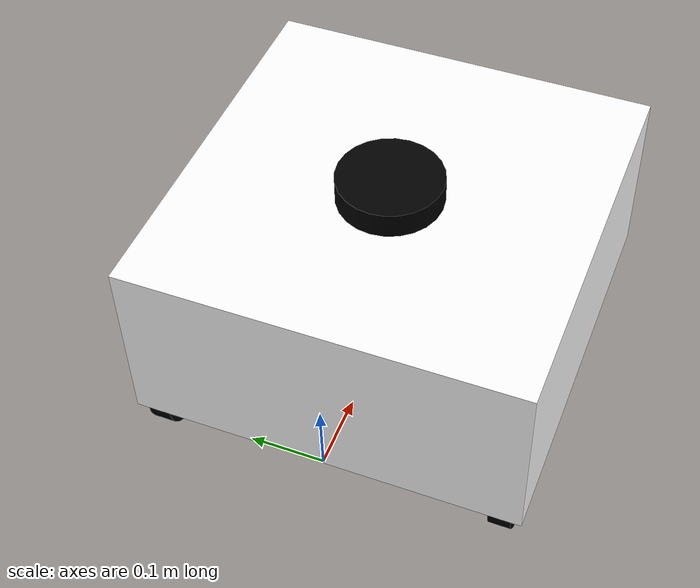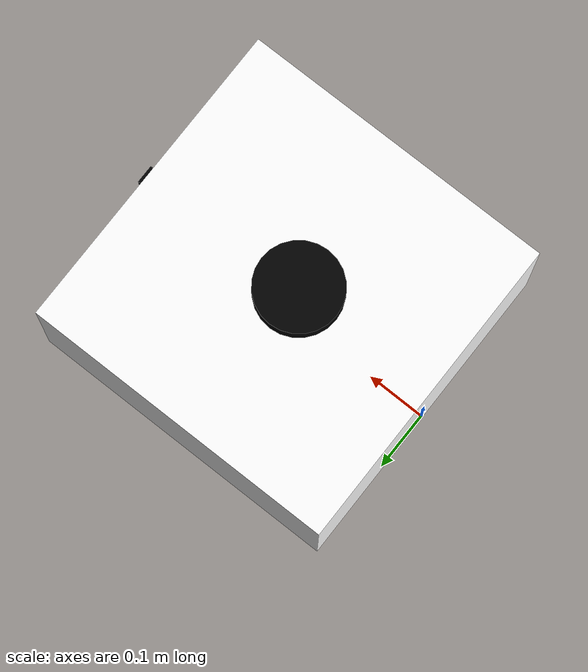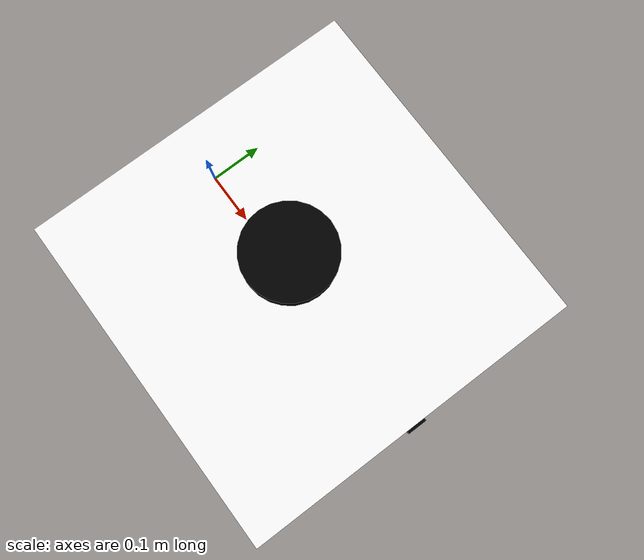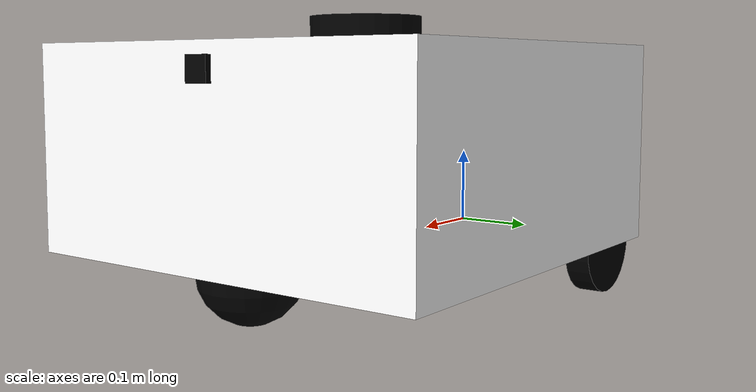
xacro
<?xml version="1.0"?>
<robot xmlns:xacro="http://www.ros.org/wiki/xacro"  name="robot">

    <xacro:include filename="robot_core.xacro" />
    <xacro:include filename="gazebo_control.xacro"/>
    <xacro:include filename="lidar.xacro"/>
    <xacro:include filename="camera.xacro"/>

</robot>

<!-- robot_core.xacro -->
<robot xmlns:xacro="http://www.ros.org/wiki/xacro">

<xacro:include filename="inertial_macros.xacro" />

<material name="black">
<color rgba="0 0 0 1"/>
</material>
<material name="blue">
<color rgba="0.2 0.2 1 1"/>
</material>
<material name="white">
<color rgba="1 1 1 1"/>
</material>

<!-- BASE LINK -->

<link name="base_link">
</link>

<!-- NAVI LINK -->
<joint name="navi_joint" type="fixed">
<parent link="base_link"/>
<child link="navi"/>
<origin xyz="0.0625 0 0"/>
</joint>

<link name="navi">
   <visual>
        <origin xyz="0.2 0 0.125"/>
        <material name="white"/>
        <geometry>
            <box size="0.53 0.53 0.25"/>
        </geometry>
   </visual>
   <collision>
        <origin xyz="0.2 0 0.125"/>
        <geometry>
            <box size="0.53 0.53 0.25"/>
        </geometry>
   </collision>
   <xacro:inertial_box mass="15" x="0.53" y="0.53" z="0.25">
    <origin xyz="0.2 0 0.125" rpy="0 0 0"/>
   </xacro:inertial_box>
</link>

<gazebo reference="navi">
        <material>Gazebo/White</material>
</gazebo>

<!-- LEFT WHEEL LINK -->

    <joint name="left_wheel_joint" type="continuous">
        <parent link="base_link"/>
        <child link="left_wheel"/>
        <origin xyz="0.0625 0.235 0" rpy="-${pi/2} 0 0" />
        <axis xyz="0 0 1"/>
        <dynamics damping="0.2"/>
    </joint>

    <link name="left_wheel">
        <visual>
            <geometry>
                <cylinder radius="0.0625" length="0.03"/>
            </geometry>
            <material name="black"/>
        </visual>
        <collision>
            <geometry>
                <cylinder radius="0.0625" length="0.03"/>
            </geometry>
        </collision>
        <xacro:inertial_cylinder mass="0.3" length="0.03" radius="0.0625">
            <origin xyz="0 0 0" rpy="0 0 0"/>
        </xacro:inertial_cylinder>
    </link>

    <gazebo reference="left_wheel">
        <material>Gazebo/Black</material>
    </gazebo>

    <!-- RIGHT WHEEL LINK -->

    <joint name="right_wheel_joint" type="continuous">
        <parent link="base_link"/>
        <child link="right_wheel"/>
        <origin xyz="0.0625 -0.235 0" rpy="${pi/2} 0 0" />
        <axis xyz="0 0 -1"/>
    </joint>

    <link name="right_wheel">
        <visual>
            <geometry>
                <cylinder radius="0.0625" length="0.03"/>
            </geometry>
            <material name="black"/>
        </visual>
        <collision>
            <geometry>
                <cylinder radius="0.0625" length="0.03"/>
            </geometry>
        </collision>
        <xacro:inertial_cylinder mass="0.3" length="0.03" radius="0.0625">
            <origin xyz="0 0 0" rpy="0 0 0"/>
        </xacro:inertial_cylinder>
    </link>

    <gazebo reference="right_wheel">
        <material>Gazebo/Black</material>
    </gazebo>

    <!-- CASTER WHEEL LINK -->

    <joint name="caster_wheel_joint" type="fixed">
        <parent link="navi"/>
        <child link="caster_wheel"/>
        <origin xyz="0.3925 0 0"/>
    </joint>

    <link name="caster_wheel">
        <visual>
            <geometry>
                <sphere radius="0.0625"/>
            </geometry>
            <material name="black"/>
        </visual>
        <collision>
            <geometry>
                <sphere radius="0.0625"/>
            </geometry>
        </collision>
        <xacro:inertial_sphere mass="0.1" radius="0.05">
            <origin xyz="0 0 0" rpy="0 0 0"/>
        </xacro:inertial_sphere>
    </link>

    <gazebo reference="caster_wheel">
        <material>Gazebo/Black</material>
    </gazebo>

</robot>

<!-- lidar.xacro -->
<robot xmlns:xacro="http://www.ros.org/wiki/xacro">

<joint name="laser_joint" type="fixed">
  <parent link="navi"/>
  <child link="laser_frame"/>
  <origin xyz="0.18 0 0.25" rpy="0 0 0"/>
</joint>

<link name="laser_frame">
<visual>
        <geometry>
            <cylinder radius="0.07" length="0.07"/>
        </geometry>
        <material name="black"/>
</visual>
<collision>
        <geometry>
            <cylinder radius="0.07" length="0.07"/>
        </geometry>
    </collision>
    <xacro:inertial_cylinder mass="0.1" length="0.07" radius="0.07">
        <origin xyz="0 0 0" rpy="0 0 0"/>
    </xacro:inertial_cylinder>
</link>

<gazebo reference="laser_frame">
        <material>Gazebo/Black</material>

        <sensor name="laser" type="ray">
            <pose> 0 0 0 0 0 0 </pose>
            <visualize>false</visualize>
            <update_rate>10</update_rate>
            <ray>
                <scan>
                    <horizontal>
                        <samples>360</samples>
                        <resolution>1</resolution>
                        <min_angle>-3.14</min_angle>
                        <max_angle>3.14</max_angle>
                    </horizontal>
                </scan>
                <range>
                    <min>0.1</min>
                    <resolution>0.01</resolution>
                    <max>12</max>
                </range>
            </ray>
            <plugin name="laser_controller" filename="libgazebo_ros_ray_sensor.so">
                <ros>
                    <argument>~/out:=scan</argument>
                </ros>
                <output_type>sensor_msgs/LaserScan</output_type>
                <frame_name>laser_frame</frame_name>
            </plugin>
        </sensor>
    </gazebo>

</robot>

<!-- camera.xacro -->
<robot xmlns:xacro="http://www.ros.org/wiki/xacro">

<joint name="camera_joint" type="fixed">
  <parent link="navi"/>
  <child link="camera_link"/>
  <origin xyz="0.4675 0 0.22" rpy="0 0 0"/>
</joint>

<link name="camera_link">
<visual>
        <geometry>
            <box size="0.010 0.03 0.03"/>
        </geometry>
        <material name="black"/>
</visual>
<collision>
        <geometry>
            <cylinder radius="0.065" length="0.04"/>
        </geometry>
    </collision>
    <xacro:inertial_cylinder mass="0.1" length="0.04" radius="0.065">
        <origin xyz="0 0 0" rpy="0 0 0"/>
    </xacro:inertial_cylinder>
</link>

<joint name="camera_optical_joint" type="fixed">
  <parent link="camera_link"/>
  <child link="camera_link_optical"/>
  <origin xyz="0 0 0" rpy="${-pi/2} 0 ${-pi/2}"/>
</joint>

<link name="camera_link_optical"></link>

<gazebo reference="camera_link">
        <material>Gazebo/Red</material>

        <sensor name="camera" type="camera">
            <pose> 0 0 0 0 0 0 </pose>
            <visualize>true</visualize>
            <update_rate>10</update_rate>
            <camera>
                <horizontal_fov>1.089</horizontal_fov>
                <image>
                    <format>R8G8B8</format>
                    <width>640</width>
                    <height>480</height>
                </image>
                <clip>
                    <near>0.05</near>
                    <far>8.0</far>
                </clip>
            </camera>
            <plugin name="camera_controller" filename="libgazebo_ros_camera.so">
                <frame_name>camera_optical_link</frame_name>
            </plugin>
        </sensor>
    </gazebo>

</robot>
